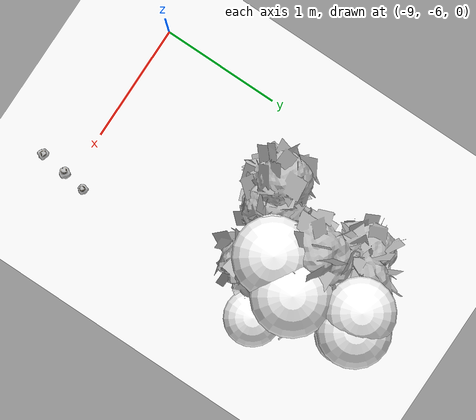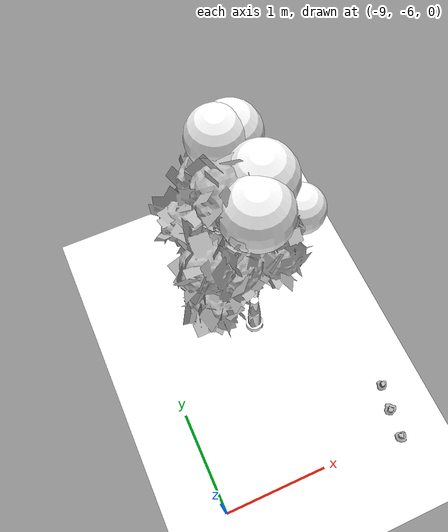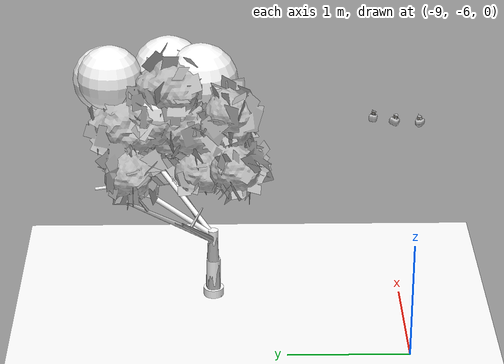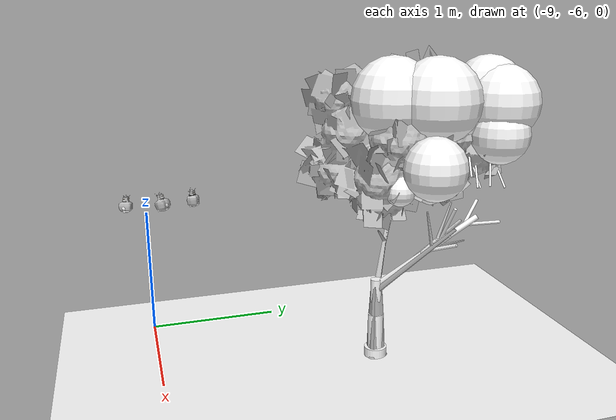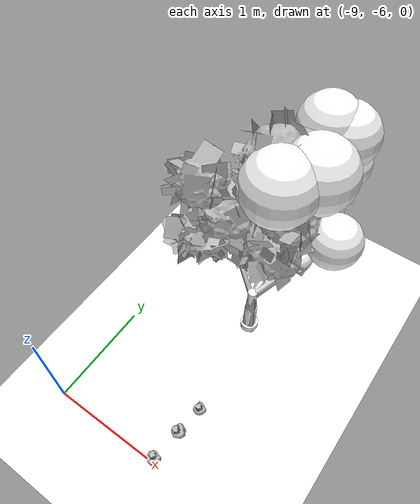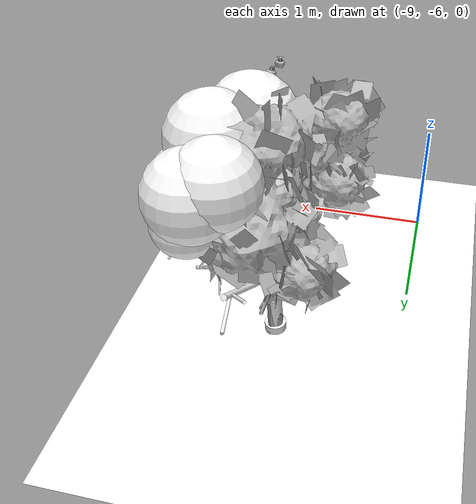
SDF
<sdf version="1.11">
 <world name="peach_orchard">
  <model name="ground">
   <static>true</static>
   <link name="link">
    <visual name="soil">
     <geometry><plane><normal>0 0 1</normal><size>32 22</size></plane></geometry>
     <material>
      <ambient>1 1 1 1</ambient>
      <diffuse>1 1 1 1</diffuse>
      <specular>0.1 0.1 0.1 1</specular>
      <pbr>
       <metal>
        <albedo_map>textures/soil_albedo.png</albedo_map>
        <normal_map type="tangent">textures/soil_normal.png</normal_map>
        <roughness>0.95</roughness>
        <metalness>0</metalness>
       </metal>
      </pbr>
     </material>
    </visual>
    <collision name="c_soil">
     <geometry><plane><normal>0 0 1</normal><size>32 22</size></plane></geometry>
    </collision>
   </link>
  </model>
  <model name="tree_r0_t1">
   <pose>-8 -4.4 0 0 0 0</pose>
   <static>true</static>
   <link name="link">
    <visual name="tree_mesh">
     <pose>0 0 0 0 0 0.17301</pose>
     <geometry>
      <mesh><uri>model://peach_sim/meshes/peach_tree_b.glb</uri><scale>0.988746 0.988746 0.988746</scale></mesh>
     </geometry>
    </visual>
    <visual name="trunk_0">
     <pose>0 0 0.170907 0 0 0</pose>
     <geometry><cylinder><radius>0.0594638</radius><length>0.341814</length></cylinder></geometry>
     <material>
      <ambient>1 1 1 1</ambient>
      <diffuse>1 1 1 1</diffuse>
      <specular>0.1 0.1 0.1 1</specular>
      <pbr>
       <metal>
        <albedo_map>textures/bark_albedo.png</albedo_map>
        <normal_map type="tangent">textures/bark_normal.png</normal_map>
        <roughness>0.9</roughness>
        <metalness>0</metalness>
       </metal>
      </pbr>
     </material>
    </visual>
    <collision name="c_trunk_0">
     <pose>0 0 0.170907 0 0 0</pose>
     <geometry><cylinder><radius>0.0594638</radius><length>0.341814</length></cylinder></geometry>
    </collision>
    <visual name="trunk_1">
     <pose>0 0 0.481648 0 0 0</pose>
     <geometry><cylinder><radius>0.042814</radius><length>0.279666</length></cylinder></geometry>
     <material>
      <ambient>1 1 1 1</ambient>
      <diffuse>1 1 1 1</diffuse>
      <specular>0.1 0.1 0.1 1</specular>
      <pbr>
       <metal>
        <albedo_map>textures/bark_albedo.png</albedo_map>
        <normal_map type="tangent">textures/bark_normal.png</normal_map>
        <roughness>0.9</roughness>
        <metalness>0</metalness>
       </metal>
      </pbr>
     </material>
    </visual>
    <collision name="c_trunk_1">
     <pose>0 0 0.481648 0 0 0</pose>
     <geometry><cylinder><radius>0.042814</radius><length>0.279666</length></cylinder></geometry>
    </collision>
    <visual name="root_flare">
     <pose>0 0 0.035 0 0 0</pose>
     <geometry><cylinder><radius>0.0862226</radius><length>0.07</length></cylinder></geometry>
     <material>
      <ambient>1 1 1 1</ambient>
      <diffuse>1 1 1 1</diffuse>
      <specular>0.1 0.1 0.1 1</specular>
      <pbr>
       <metal>
        <albedo_map>textures/bark_albedo.png</albedo_map>
        <normal_map type="tangent">textures/bark_normal.png</normal_map>
        <roughness>0.95</roughness>
        <metalness>0</metalness>
       </metal>
      </pbr>
     </material>
    </visual>
    <visual name="scaffold_0">
     <pose>0.0526236 0.379852 0.822378 0 0.991944 1.43314</pose>
     <geometry><cylinder><radius>0.022</radius><length>0.916221</length></cylinder></geometry>
     <material>
      <ambient>1 1 1 1</ambient>
      <diffuse>1 1 1 1</diffuse>
      <specular>0.1 0.1 0.1 1</specular>
      <pbr>
       <metal>
        <albedo_map>textures/bark_albedo.png</albedo_map>
        <normal_map type="tangent">textures/bark_normal.png</normal_map>
        <roughness>0.9</roughness>
        <metalness>0</metalness>
       </metal>
      </pbr>
     </material>
    </visual>
    <collision name="c_scaffold_0">
     <pose>0.0526236 0.379852 0.822378 0 0.991944 1.43314</pose>
     <geometry><cylinder><radius>0.022</radius><length>0.916221</length></cylinder></geometry>
    </collision>
    <visual name="branchlet_0_0">
     <pose>0.0714903 0.830336 1.00641 0 1.64038 1.71219</pose>
     <geometry><cylinder><radius>0.012</radius><length>0.313919</length></cylinder></geometry>
     <material>
      <ambient>1 1 1 1</ambient>
      <diffuse>1 1 1 1</diffuse>
      <specular>0.1 0.1 0.1 1</specular>
      <pbr>
       <metal>
        <albedo_map>textures/bark_albedo.png</albedo_map>
        <normal_map type="tangent">textures/bark_normal.png</normal_map>
        <roughness>0.9</roughness>
        <metalness>0</metalness>
       </metal>
      </pbr>
     </material>
    </visual>
    <visual name="branchlet_0_1">
     <pose>0.145629 0.494613 1.03505 0 0.50174 0.259137</pose>
     <geometry><cylinder><radius>0.012</radius><length>0.344367</length></cylinder></geometry>
     <material>
      <ambient>1 1 1 1</ambient>
      <diffuse>1 1 1 1</diffuse>
      <specular>0.1 0.1 0.1 1</specular>
      <pbr>
       <metal>
        <albedo_map>textures/bark_albedo.png</albedo_map>
        <normal_map type="tangent">textures/bark_normal.png</normal_map>
        <roughness>0.9</roughness>
        <metalness>0</metalness>
       </metal>
      </pbr>
     </material>
    </visual>
    <visual name="branchlet_0_2">
     <pose>0.0159708 0.748942 1.07806 0 1.01911 2.24976</pose>
     <geometry><cylinder><radius>0.012</radius><length>0.280179</length></cylinder></geometry>
     <material>
      <ambient>1 1 1 1</ambient>
      <diffuse>1 1 1 1</diffuse>
      <specular>0.1 0.1 0.1 1</specular>
      <pbr>
       <metal>
        <albedo_map>textures/bark_albedo.png</albedo_map>
        <normal_map type="tangent">textures/bark_normal.png</normal_map>
        <roughness>0.9</roughness>
        <metalness>0</metalness>
       </metal>
      </pbr>
     </material>
    </visual>
    <visual name="scaffold_1">
     <pose>0.159735 0.21292 0.797193 0 0.868093 0.927159</pose>
     <geometry><cylinder><radius>0.022</radius><length>0.697622</length></cylinder></geometry>
     <material>
      <ambient>1 1 1 1</ambient>
      <diffuse>1 1 1 1</diffuse>
      <specular>0.1 0.1 0.1 1</specular>
      <pbr>
       <metal>
        <albedo_map>textures/bark_albedo.png</albedo_map>
        <normal_map type="tangent">textures/bark_normal.png</normal_map>
        <roughness>0.9</roughness>
        <metalness>0</metalness>
       </metal>
      </pbr>
     </material>
    </visual>
    <collision name="c_scaffold_1">
     <pose>0.159735 0.21292 0.797193 0 0.868093 0.927159</pose>
     <geometry><cylinder><radius>0.022</radius><length>0.697622</length></cylinder></geometry>
    </collision>
    <visual name="branchlet_1_0">
     <pose>0.229747 0.290917 0.905069 0 0.744111 0.811076</pose>
     <geometry><cylinder><radius>0.012</radius><length>0.234479</length></cylinder></geometry>
     <material>
      <ambient>1 1 1 1</ambient>
      <diffuse>1 1 1 1</diffuse>
      <specular>0.1 0.1 0.1 1</specular>
      <pbr>
       <metal>
        <albedo_map>textures/bark_albedo.png</albedo_map>
        <normal_map type="tangent">textures/bark_normal.png</normal_map>
        <roughness>0.9</roughness>
        <metalness>0</metalness>
       </metal>
      </pbr>
     </material>
    </visual>
    <visual name="branchlet_1_1">
     <pose>0.319047 0.372397 0.936307 0 1.20753 0.647583</pose>
     <geometry><cylinder><radius>0.012</radius><length>0.24605</length></cylinder></geometry>
     <material>
      <ambient>1 1 1 1</ambient>
      <diffuse>1 1 1 1</diffuse>
      <specular>0.1 0.1 0.1 1</specular>
      <pbr>
       <metal>
        <albedo_map>textures/bark_albedo.png</albedo_map>
        <normal_map type="tangent">textures/bark_normal.png</normal_map>
        <roughness>0.9</roughness>
        <metalness>0</metalness>
       </metal>
      </pbr>
     </material>
    </visual>
    <visual name="canopy_0">
     <pose>-0.00565732 0.405361 1.78113 0 0 0</pose>
     <geometry><sphere><radius>0.309091</radius></sphere></geometry>
     <material>
      <ambient>1 1 1 1</ambient>
      <diffuse>1 1 1 1</diffuse>
      <specular>0.1 0.1 0.1 1</specular>
      <pbr>
       <metal>
        <albedo_map>textures/leaf_albedo.png</albedo_map>
        <normal_map type="tangent">textures/leaf_normal.png</normal_map>
        <roughness>0.85</roughness>
        <metalness>0</metalness>
       </metal>
      </pbr>
     </material>
    </visual>
    <collision name="c_canopy_0">
     <pose>-0.00565732 0.405361 1.78113 0 0 0</pose>
     <geometry><sphere><radius>0.309091</radius></sphere></geometry>
    </collision>
    <visual name="canopy_1">
     <pose>-0.0367372 0.00923862 1.95698 0 0 0</pose>
     <geometry><sphere><radius>0.184651</radius></sphere></geometry>
     <material>
      <ambient>1 1 1 1</ambient>
      <diffuse>1 1 1 1</diffuse>
      <specular>0.1 0.1 0.1 1</specular>
      <pbr>
       <metal>
        <albedo_map>textures/leaf_albedo.png</albedo_map>
        <normal_map type="tangent">textures/leaf_normal.png</normal_map>
        <roughness>0.85</roughness>
        <metalness>0</metalness>
       </metal>
      </pbr>
     </material>
    </visual>
    <collision name="c_canopy_1">
     <pose>-0.0367372 0.00923862 1.95698 0 0 0</pose>
     <geometry><sphere><radius>0.184651</radius></sphere></geometry>
    </collision>
    <visual name="canopy_2">
     <pose>0.0256087 0.437801 1.83449 0 0 0</pose>
     <geometry><sphere><radius>0.211861</radius></sphere></geometry>
     <material>
      <ambient>1 1 1 1</ambient>
      <diffuse>1 1 1 1</diffuse>
      <specular>0.1 0.1 0.1 1</specular>
      <pbr>
       <metal>
        <albedo_map>textures/leaf_albedo.png</albedo_map>
        <normal_map type="tangent">textures/leaf_normal.png</normal_map>
        <roughness>0.85</roughness>
        <metalness>0</metalness>
       </metal>
      </pbr>
     </material>
    </visual>
    <collision name="c_canopy_2">
     <pose>0.0256087 0.437801 1.83449 0 0 0</pose>
     <geometry><sphere><radius>0.211861</radius></sphere></geometry>
    </collision>
    <visual name="canopy_3">
     <pose>0.516677 0.209098 1.56682 0 0 0</pose>
     <geometry><sphere><radius>0.218295</radius></sphere></geometry>
     <material>
      <ambient>1 1 1 1</ambient>
      <diffuse>1 1 1 1</diffuse>
      <specular>0.1 0.1 0.1 1</specular>
      <pbr>
       <metal>
        <albedo_map>textures/leaf_albedo.png</albedo_map>
        <normal_map type="tangent">textures/leaf_normal.png</normal_map>
        <roughness>0.85</roughness>
        <metalness>0</metalness>
       </metal>
      </pbr>
     </material>
    </visual>
    <visual name="canopy_4">
     <pose>0.248529 0.82955 1.72011 0 0 0</pose>
     <geometry><sphere><radius>0.2164</radius></sphere></geometry>
     <material>
      <ambient>1 1 1 1</ambient>
      <diffuse>1 1 1 1</diffuse>
      <specular>0.1 0.1 0.1 1</specular>
      <pbr>
       <metal>
        <albedo_map>textures/leaf_albedo.png</albedo_map>
        <normal_map type="tangent">textures/leaf_normal.png</normal_map>
        <roughness>0.85</roughness>
        <metalness>0</metalness>
       </metal>
      </pbr>
     </material>
    </visual>
    <visual name="canopy_5">
     <pose>0.0654454 0.0849304 1.97389 0 0 0</pose>
     <geometry><sphere><radius>0.305003</radius></sphere></geometry>
     <material>
      <ambient>1 1 1 1</ambient>
      <diffuse>1 1 1 1</diffuse>
      <specular>0.1 0.1 0.1 1</specular>
      <pbr>
       <metal>
        <albedo_map>textures/leaf_albedo.png</albedo_map>
        <normal_map type="tangent">textures/leaf_normal.png</normal_map>
        <roughness>0.85</roughness>
        <metalness>0</metalness>
       </metal>
      </pbr>
     </material>
    </visual>
    <visual name="canopy_6">
     <pose>0.18583 0.867067 1.93907 0 0 0</pose>
     <geometry><sphere><radius>0.274565</radius></sphere></geometry>
     <material>
      <ambient>1 1 1 1</ambient>
      <diffuse>1 1 1 1</diffuse>
      <specular>0.1 0.1 0.1 1</specular>
      <pbr>
       <metal>
        <albedo_map>textures/leaf_albedo.png</albedo_map>
        <normal_map type="tangent">textures/leaf_normal.png</normal_map>
        <roughness>0.85</roughness>
        <metalness>0</metalness>
       </metal>
      </pbr>
     </material>
    </visual>
    <visual name="canopy_7">
     <pose>0.106884 0.559031 1.86271 0 0 0</pose>
     <geometry><sphere><radius>0.189376</radius></sphere></geometry>
     <material>
      <ambient>1 1 1 1</ambient>
      <diffuse>1 1 1 1</diffuse>
      <specular>0.1 0.1 0.1 1</specular>
      <pbr>
       <metal>
        <albedo_map>textures/leaf_albedo.png</albedo_map>
        <normal_map type="tangent">textures/leaf_normal.png</normal_map>
        <roughness>0.85</roughness>
        <metalness>0</metalness>
       </metal>
      </pbr>
     </material>
    </visual>
    <visual name="canopy_8">
     <pose>0.0531343 0.825626 2.00528 0 0 0</pose>
     <geometry><sphere><radius>0.265376</radius></sphere></geometry>
     <material>
      <ambient>1 1 1 1</ambient>
      <diffuse>1 1 1 1</diffuse>
      <specular>0.1 0.1 0.1 1</specular>
      <pbr>
       <metal>
        <albedo_map>textures/leaf_albedo.png</albedo_map>
        <normal_map type="tangent">textures/leaf_normal.png</normal_map>
        <roughness>0.85</roughness>
        <metalness>0</metalness>
       </metal>
      </pbr>
     </material>
    </visual>
    <visual name="canopy_9">
     <pose>0.224933 0.350795 1.97596 0 0 0</pose>
     <geometry><sphere><radius>0.306023</radius></sphere></geometry>
     <material>
      <ambient>1 1 1 1</ambient>
      <diffuse>1 1 1 1</diffuse>
      <specular>0.1 0.1 0.1 1</specular>
      <pbr>
       <metal>
        <albedo_map>textures/leaf_albedo.png</albedo_map>
        <normal_map type="tangent">textures/leaf_normal.png</normal_map>
        <roughness>0.85</roughness>
        <metalness>0</metalness>
       </metal>
      </pbr>
     </material>
    </visual>
    <visual name="foliage_0">
     <pose>0.335429 0.0364044 1.38687 0 0 0</pose>
     <geometry><sphere><radius>0.106398</radius></sphere></geometry>
     <material>
      <ambient>1 1 1 1</ambient>
      <diffuse>1 1 1 1</diffuse>
      <specular>0.1 0.1 0.1 1</specular>
      <pbr>
       <metal>
        <albedo_map>textures/leaf_albedo.png</albedo_map>
        <normal_map type="tangent">textures/leaf_normal.png</normal_map>
        <roughness>0.85</roughness>
        <metalness>0</metalness>
       </metal>
      </pbr>
     </material>
    </visual>
    <visual name="foliage_4">
     <pose>0.138846 0.367717 1.48134 0 0 0</pose>
     <geometry><sphere><radius>0.120223</radius></sphere></geometry>
     <material>
      <ambient>1 1 1 1</ambient>
      <diffuse>1 1 1 1</diffuse>
      <specular>0.1 0.1 0.1 1</specular>
      <pbr>
       <metal>
        <albedo_map>textures/leaf_albedo.png</albedo_map>
        <normal_map type="tangent">textures/leaf_normal.png</normal_map>
        <roughness>0.85</roughness>
        <metalness>0</metalness>
       </metal>
      </pbr>
     </material>
    </visual>
    <visual name="foliage_8">
     <pose>0.194677 0.324617 1.33434 0 0 0</pose>
     <geometry><sphere><radius>0.101462</radius></sphere></geometry>
     <material>
      <ambient>1 1 1 1</ambient>
      <diffuse>1 1 1 1</diffuse>
      <specular>0.1 0.1 0.1 1</specular>
      <pbr>
       <metal>
        <albedo_map>textures/leaf_albedo.png</albedo_map>
        <normal_map type="tangent">textures/leaf_normal.png</normal_map>
        <roughness>0.85</roughness>
        <metalness>0</metalness>
       </metal>
      </pbr>
     </material>
    </visual>
    <visual name="twig_0">
     <pose>0.319271 0.116214 1.50184 0 0.70652 2.94143</pose>
     <geometry><cylinder><radius>0.007</radius><length>0.111262</length></cylinder></geometry>
     <material>
      <ambient>1 1 1 1</ambient>
      <diffuse>1 1 1 1</diffuse>
      <specular>0.1 0.1 0.1 1</specular>
      <pbr>
       <metal>
        <albedo_map>textures/bark_albedo.png</albedo_map>
        <normal_map type="tangent">textures/bark_normal.png</normal_map>
        <roughness>0.9</roughness>
        <metalness>0</metalness>
       </metal>
      </pbr>
     </material>
    </visual>
    <visual name="twig_1">
     <pose>0.398182 0.327903 1.47739 0 0.224347 -2.33539</pose>
     <geometry><cylinder><radius>0.007</radius><length>0.206848</length></cylinder></geometry>
     <material>
      <ambient>1 1 1 1</ambient>
      <diffuse>1 1 1 1</diffuse>
      <specular>0.1 0.1 0.1 1</specular>
      <pbr>
       <metal>
        <albedo_map>textures/bark_albedo.png</albedo_map>
        <normal_map type="tangent">textures/bark_normal.png</normal_map>
        <roughness>0.9</roughness>
        <metalness>0</metalness>
       </metal>
      </pbr>
     </material>
    </visual>
    <visual name="twig_2">
     <pose>0.354279 0.601828 1.45208 0 0.519013 2.92734</pose>
     <geometry><cylinder><radius>0.007</radius><length>0.164391</length></cylinder></geometry>
     <material>
      <ambient>1 1 1 1</ambient>
      <diffuse>1 1 1 1</diffuse>
      <specular>0.1 0.1 0.1 1</specular>
      <pbr>
       <metal>
        <albedo_map>textures/bark_albedo.png</albedo_map>
        <normal_map type="tangent">textures/bark_normal.png</normal_map>
        <roughness>0.9</roughness>
        <metalness>0</metalness>
       </metal>
      </pbr>
     </material>
    </visual>
    <visual name="twig_3">
     <pose>0.374728 0.786536 1.42444 0 0.685027 -2.98928</pose>
     <geometry><cylinder><radius>0.007</radius><length>0.136285</length></cylinder></geometry>
     <material>
      <ambient>1 1 1 1</ambient>
      <diffuse>1 1 1 1</diffuse>
      <specular>0.1 0.1 0.1 1</specular>
      <pbr>
       <metal>
        <albedo_map>textures/bark_albedo.png</albedo_map>
        <normal_map type="tangent">textures/bark_normal.png</normal_map>
        <roughness>0.9</roughness>
        <metalness>0</metalness>
       </metal>
      </pbr>
     </material>
    </visual>
    <visual name="twig_4">
     <pose>0.232594 0.414236 1.56295 0 0.228307 -2.14235</pose>
     <geometry><cylinder><radius>0.007</radius><length>0.118999</length></cylinder></geometry>
     <material>
      <ambient>1 1 1 1</ambient>
      <diffuse>1 1 1 1</diffuse>
      <specular>0.1 0.1 0.1 1</specular>
      <pbr>
       <metal>
        <albedo_map>textures/bark_albedo.png</albedo_map>
        <normal_map type="tangent">textures/bark_normal.png</normal_map>
        <roughness>0.9</roughness>
        <metalness>0</metalness>
       </metal>
      </pbr>
     </material>
    </visual>
    <visual name="twig_5">
     <pose>0.190001 0.40193 1.58296 0 0.244846 -2.8036</pose>
     <geometry><cylinder><radius>0.007</radius><length>0.117355</length></cylinder></geometry>
     <material>
      <ambient>1 1 1 1</ambient>
      <diffuse>1 1 1 1</diffuse>
      <specular>0.1 0.1 0.1 1</specular>
      <pbr>
       <metal>
        <albedo_map>textures/bark_albedo.png</albedo_map>
        <normal_map type="tangent">textures/bark_normal.png</normal_map>
        <roughness>0.9</roughness>
        <metalness>0</metalness>
       </metal>
      </pbr>
     </material>
    </visual>
    <visual name="twig_6">
     <pose>0.240252 0.404035 1.5498 0 0.691942 3.00389</pose>
     <geometry><cylinder><radius>0.007</radius><length>0.107317</length></cylinder></geometry>
     <material>
      <ambient>1 1 1 1</ambient>
      <diffuse>1 1 1 1</diffuse>
      <specular>0.1 0.1 0.1 1</specular>
      <pbr>
       <metal>
        <albedo_map>textures/bark_albedo.png</albedo_map>
        <normal_map type="tangent">textures/bark_normal.png</normal_map>
        <roughness>0.9</roughness>
        <metalness>0</metalness>
       </metal>
      </pbr>
     </material>
    </visual>
    <visual name="twig_7">
     <pose>0.496088 0.472219 1.55939 0 0.683747 2.88329</pose>
     <geometry><cylinder><radius>0.007</radius><length>0.149636</length></cylinder></geometry>
     <material>
      <ambient>1 1 1 1</ambient>
      <diffuse>1 1 1 1</diffuse>
      <specular>0.1 0.1 0.1 1</specular>
      <pbr>
       <metal>
        <albedo_map>textures/bark_albedo.png</albedo_map>
        <normal_map type="tangent">textures/bark_normal.png</normal_map>
        <roughness>0.9</roughness>
        <metalness>0</metalness>
       </metal>
      </pbr>
     </material>
    </visual>
    <visual name="twig_8">
     <pose>0.243494 0.33531 1.4051 0 0.270389 2.80398</pose>
     <geometry><cylinder><radius>0.007</radius><length>0.101068</length></cylinder></geometry>
     <material>
      <ambient>1 1 1 1</ambient>
      <diffuse>1 1 1 1</diffuse>
      <specular>0.1 0.1 0.1 1</specular>
      <pbr>
       <metal>
        <albedo_map>textures/bark_albedo.png</albedo_map>
        <normal_map type="tangent">textures/bark_normal.png</normal_map>
        <roughness>0.9</roughness>
        <metalness>0</metalness>
       </metal>
      </pbr>
     </material>
    </visual>
    <visual name="twig_9">
     <pose>0.172024 0.512517 1.36029 0 0.717054 2.77618</pose>
     <geometry><cylinder><radius>0.007</radius><length>0.104775</length></cylinder></geometry>
     <material>
      <ambient>1 1 1 1</ambient>
      <diffuse>1 1 1 1</diffuse>
      <specular>0.1 0.1 0.1 1</specular>
      <pbr>
       <metal>
        <albedo_map>textures/bark_albedo.png</albedo_map>
        <normal_map type="tangent">textures/bark_normal.png</normal_map>
        <roughness>0.9</roughness>
        <metalness>0</metalness>
       </metal>
      </pbr>
     </material>
    </visual>
    <visual name="twig_10">
     <pose>0.186333 0.685261 1.4254 0 0.4155 -2.47994</pose>
     <geometry><cylinder><radius>0.007</radius><length>0.212198</length></cylinder></geometry>
     <material>
      <ambient>1 1 1 1</ambient>
      <diffuse>1 1 1 1</diffuse>
      <specular>0.1 0.1 0.1 1</specular>
      <pbr>
       <metal>
        <albedo_map>textures/bark_albedo.png</albedo_map>
        <normal_map type="tangent">textures/bark_normal.png</normal_map>
        <roughness>0.9</roughness>
        <metalness>0</metalness>
       </metal>
      </pbr>
     </material>
    </visual>
    <visual name="twig_11">
     <pose>0.179184 0.80789 1.41519 0 0.554379 2.69645</pose>
     <geometry><cylinder><radius>0.007</radius><length>0.190187</length></cylinder></geometry>
     <material>
      <ambient>1 1 1 1</ambient>
      <diffuse>1 1 1 1</diffuse>
      <specular>0.1 0.1 0.1 1</specular>
      <pbr>
       <metal>
        <albedo_map>textures/bark_albedo.png</albedo_map>
        <normal_map type="tangent">textures/bark_normal.png</normal_map>
        <roughness>0.9</roughness>
        <metalness>0</metalness>
       </metal>
      </pbr>
     </material>
    </visual>
   </link>
  </model>
  <model name="peach_tree_r0_t0_02">
   <pose>-7.62189 -6.15566 1.41191 0 0.117737 2.72746</pose>
   <static>true</static>
   <link name="bag">
    <visual name="bag_mesh">
     <pose>0 0 0.0433909 0 0 0</pose>
     <geometry>
      <mesh><uri>model://peach_sim/meshes/bagged_peach.glb</uri><scale>1.02486 1.13799 0.986156</scale></mesh>
     </geometry>
    </visual>
    <visual name="body">
     <pose>0 0 0.0253909 0 0 0</pose>
     <geometry><ellipsoid><radii>0.0384322 0.0295877 0.0274222</radii></ellipsoid></geometry>
     <material>
      <ambient>1 1 1 1</ambient>
      <diffuse>1 1 1 1</diffuse>
      <specular>0.1 0.1 0.1 1</specular>
      <pbr>
       <metal>
        <albedo_map>textures/paper_bag_albedo.png</albedo_map>
        <normal_map type="tangent">textures/paper_bag_normal.png</normal_map>
        <roughness>0.72</roughness>
        <metalness>0</metalness>
       </metal>
      </pbr>
     </material>
    </visual>
    <visual name="bottom_fold">
     <pose>0 0 0.012 0 0 0.35</pose>
     <geometry><box><size>0.0595699 0.0340259 0.022</size></box></geometry>
     <material>
      <ambient>1 1 1 1</ambient>
      <diffuse>1 1 1 1</diffuse>
      <specular>0.1 0.1 0.1 1</specular>
      <pbr>
       <metal>
        <albedo_map>textures/paper_bag_albedo.png</albedo_map>
        <normal_map type="tangent">textures/paper_bag_normal.png</normal_map>
        <roughness>0.8</roughness>
        <metalness>0</metalness>
       </metal>
      </pbr>
     </material>
    </visual>
    <visual name="fruit">
     <pose>0 0 0.0177791 0 0 0</pose>
     <geometry><sphere><radius>0.0247303</radius></sphere></geometry>
     <material>
      <ambient>1 1 1 1</ambient>
      <diffuse>1 1 1 1</diffuse>
      <specular>0.1 0.1 0.1 1</specular>
      <pbr>
       <metal>
        <albedo_map>textures/fruit_skin_albedo.png</albedo_map>
        <normal_map type="tangent">textures/fruit_skin_normal.png</normal_map>
        <roughness>0.55</roughness>
        <metalness>0</metalness>
       </metal>
      </pbr>
     </material>
    </visual>
    <visual name="neck">
     <pose>0 0 0.0597818 0 0 0</pose>
     <geometry><cylinder><radius>0.013</radius><length>0.018</length></cylinder></geometry>
     <material>
      <ambient>1 1 1 1</ambient>
      <diffuse>1 1 1 1</diffuse>
      <specular>0.1 0.1 0.1 1</specular>
      <pbr>
       <metal>
        <albedo_map>textures/paper_bag_albedo.png</albedo_map>
        <normal_map type="tangent">textures/paper_bag_normal.png</normal_map>
        <roughness>0.75</roughness>
        <metalness>0</metalness>
       </metal>
      </pbr>
     </material>
    </visual>
    <visual name="gather">
     <pose>0 0 0.0407818 0 0 0</pose>
     <geometry><cylinder><radius>0.019</radius><length>0.02</length></cylinder></geometry>
     <material>
      <ambient>1 1 1 1</ambient>
      <diffuse>1 1 1 1</diffuse>
      <specular>0.1 0.1 0.1 1</specular>
      <pbr>
       <metal>
        <albedo_map>textures/paper_bag_albedo.png</albedo_map>
        <normal_map type="tangent">textures/paper_bag_normal.png</normal_map>
        <roughness>0.8</roughness>
        <metalness>0</metalness>
       </metal>
      </pbr>
     </material>
    </visual>
    <visual name="inner_paper">
     <pose>0 0 0.0647818 0 0 0</pose>
     <geometry><cylinder><radius>0.01</radius><length>0.008</length></cylinder></geometry>
     <material>
      <ambient>0.180392 0.14902 0.133333 1</ambient>
      <diffuse>0.180392 0.14902 0.133333 1</diffuse>
      <specular>0.1 0.1 0.1 1</specular>
     </material>
    </visual>
    <visual name="wire_0">
     <pose>0 0 0.0547818 0 0 0</pose>
     <geometry><cylinder><radius>0.0205</radius><length>0.0035</length></cylinder></geometry>
     <material>
      <ambient>0.25 0.25 0.25 1</ambient>
      <diffuse>0.25 0.25 0.25 1</diffuse>
      <specular>0.1 0.1 0.1 1</specular>
     </material>
    </visual>
    <visual name="wire_1">
     <pose>0 0 0.0617818 0 0 0</pose>
     <geometry><cylinder><radius>0.0205</radius><length>0.0035</length></cylinder></geometry>
     <material>
      <ambient>0.25 0.25 0.25 1</ambient>
      <diffuse>0.25 0.25 0.25 1</diffuse>
      <specular>0.1 0.1 0.1 1</specular>
     </material>
    </visual>
    <visual name="wire_tail">
     <pose>0.01 0 0.0627818 0 0.521618 0</pose>
     <geometry><cylinder><radius>0.0012</radius><length>0.026</length></cylinder></geometry>
     <material>
      <ambient>0.25 0.25 0.25 1</ambient>
      <diffuse>0.25 0.25 0.25 1</diffuse>
      <specular>0.1 0.1 0.1 1</specular>
     </material>
    </visual>
    <collision name="c_body">
     <pose>0 0 0.0253909 0 0 0</pose>
     <geometry><cylinder><radius>0.0384322</radius><length>0.0507818</length></cylinder></geometry>
    </collision>
   </link>
  </model>
  <model name="peach_tree_r0_t0_03">
   <pose>-7.59278 -5.93657 1.41108 0 0.278675 -2.29431</pose>
   <static>true</static>
   <link name="bag">
    <visual name="bag_mesh">
     <pose>0 0 0.0474425 0 0 -0</pose>
     <geometry>
      <mesh><uri>model://peach_sim/meshes/bagged_peach.glb</uri><scale>1.04955 1.2209 1.07824</scale></mesh>
     </geometry>
    </visual>
    <visual name="body">
     <pose>0 0 0.0294425 0 0 0</pose>
     <geometry><ellipsoid><radii>0.0393582 0.0317434 0.0317979</radii></ellipsoid></geometry>
     <material>
      <ambient>1 1 1 1</ambient>
      <diffuse>1 1 1 1</diffuse>
      <specular>0.1 0.1 0.1 1</specular>
      <pbr>
       <metal>
        <albedo_map>textures/paper_bag_albedo.png</albedo_map>
        <normal_map type="tangent">textures/paper_bag_normal.png</normal_map>
        <roughness>0.72</roughness>
        <metalness>0</metalness>
       </metal>
      </pbr>
     </material>
    </visual>
    <visual name="bottom_fold">
     <pose>0 0 0.012 0 0 0.35</pose>
     <geometry><box><size>0.0610052 0.0365049 0.022</size></box></geometry>
     <material>
      <ambient>1 1 1 1</ambient>
      <diffuse>1 1 1 1</diffuse>
      <specular>0.1 0.1 0.1 1</specular>
      <pbr>
       <metal>
        <albedo_map>textures/paper_bag_albedo.png</albedo_map>
        <normal_map type="tangent">textures/paper_bag_normal.png</normal_map>
        <roughness>0.8</roughness>
        <metalness>0</metalness>
       </metal>
      </pbr>
     </material>
    </visual>
    <visual name="fruit">
     <pose>0 0 0.0189303 0 0 0</pose>
     <geometry><sphere><radius>0.0259275</radius></sphere></geometry>
     <material>
      <ambient>1 1 1 1</ambient>
      <diffuse>1 1 1 1</diffuse>
      <specular>0.1 0.1 0.1 1</specular>
      <pbr>
       <metal>
        <albedo_map>textures/fruit_skin_albedo.png</albedo_map>
        <normal_map type="tangent">textures/fruit_skin_normal.png</normal_map>
        <roughness>0.55</roughness>
        <metalness>0</metalness>
       </metal>
      </pbr>
     </material>
    </visual>
    <visual name="neck">
     <pose>0 0 0.067885 0 0 0</pose>
     <geometry><cylinder><radius>0.013</radius><length>0.018</length></cylinder></geometry>
     <material>
      <ambient>1 1 1 1</ambient>
      <diffuse>1 1 1 1</diffuse>
      <specular>0.1 0.1 0.1 1</specular>
      <pbr>
       <metal>
        <albedo_map>textures/paper_bag_albedo.png</albedo_map>
        <normal_map type="tangent">textures/paper_bag_normal.png</normal_map>
        <roughness>0.75</roughness>
        <metalness>0</metalness>
       </metal>
      </pbr>
     </material>
    </visual>
    <visual name="gather">
     <pose>0 0 0.048885 0 0 0</pose>
     <geometry><cylinder><radius>0.019</radius><length>0.02</length></cylinder></geometry>
     <material>
      <ambient>1 1 1 1</ambient>
      <diffuse>1 1 1 1</diffuse>
      <specular>0.1 0.1 0.1 1</specular>
      <pbr>
       <metal>
        <albedo_map>textures/paper_bag_albedo.png</albedo_map>
        <normal_map type="tangent">textures/paper_bag_normal.png</normal_map>
        <roughness>0.8</roughness>
        <metalness>0</metalness>
       </metal>
      </pbr>
     </material>
    </visual>
    <visual name="inner_paper">
     <pose>0 0 0.072885 0 0 0</pose>
     <geometry><cylinder><radius>0.01</radius><length>0.008</length></cylinder></geometry>
     <material>
      <ambient>0.180392 0.14902 0.133333 1</ambient>
      <diffuse>0.180392 0.14902 0.133333 1</diffuse>
      <specular>0.1 0.1 0.1 1</specular>
     </material>
    </visual>
    <visual name="wire_0">
     <pose>0 0 0.062885 0 0 0</pose>
     <geometry><cylinder><radius>0.0205</radius><length>0.0035</length></cylinder></geometry>
     <material>
      <ambient>0.25 0.25 0.25 1</ambient>
      <diffuse>0.25 0.25 0.25 1</diffuse>
      <specular>0.1 0.1 0.1 1</specular>
     </material>
    </visual>
    <visual name="wire_1">
     <pose>0 0 0.069885 0 0 0</pose>
     <geometry><cylinder><radius>0.0205</radius><length>0.0035</length></cylinder></geometry>
     <material>
      <ambient>0.25 0.25 0.25 1</ambient>
      <diffuse>0.25 0.25 0.25 1</diffuse>
      <specular>0.1 0.1 0.1 1</specular>
     </material>
    </visual>
    <visual name="wire_tail">
     <pose>0.01 0 0.070885 0 0.521618 0</pose>
     <geometry><cylinder><radius>0.0012</radius><length>0.026</length></cylinder></geometry>
     <material>
      <ambient>0.25 0.25 0.25 1</ambient>
      <diffuse>0.25 0.25 0.25 1</diffuse>
      <specular>0.1 0.1 0.1 1</specular>
     </material>
    </visual>
    <collision name="c_body">
     <pose>0 0 0.0294425 0 0 0</pose>
     <geometry><cylinder><radius>0.0393582</radius><length>0.058885</length></cylinder></geometry>
    </collision>
   </link>
  </model>
  <model name="peach_tree_r0_t0_04">
   <pose>-7.57104 -5.75944 1.4308 0 0.0984068 -1.9769</pose>
   <static>true</static>
   <link name="bag">
    <visual name="bag_mesh">
     <pose>0 0 0.0462415 0 0 -0</pose>
     <geometry>
      <mesh><uri>model://peach_sim/meshes/bagged_peach.glb</uri><scale>0.928431 1.07328 1.05094</scale></mesh>
     </geometry>
    </visual>
    <visual name="body">
     <pose>0 0 0.0282415 0 0 0</pose>
     <geometry><ellipsoid><radii>0.0348162 0.0279052 0.0305008</radii></ellipsoid></geometry>
     <material>
      <ambient>1 1 1 1</ambient>
      <diffuse>1 1 1 1</diffuse>
      <specular>0.1 0.1 0.1 1</specular>
      <pbr>
       <metal>
        <albedo_map>textures/paper_bag_albedo.png</albedo_map>
        <normal_map type="tangent">textures/paper_bag_normal.png</normal_map>
        <roughness>0.72</roughness>
        <metalness>0</metalness>
       </metal>
      </pbr>
     </material>
    </visual>
    <visual name="bottom_fold">
     <pose>0 0 0.012 0 0 0.35</pose>
     <geometry><box><size>0.0539651 0.0320909 0.022</size></box></geometry>
     <material>
      <ambient>1 1 1 1</ambient>
      <diffuse>1 1 1 1</diffuse>
      <specular>0.1 0.1 0.1 1</specular>
      <pbr>
       <metal>
        <albedo_map>textures/paper_bag_albedo.png</albedo_map>
        <normal_map type="tangent">textures/paper_bag_normal.png</normal_map>
        <roughness>0.8</roughness>
        <metalness>0</metalness>
       </metal>
      </pbr>
     </material>
    </visual>
    <visual name="fruit">
     <pose>0 0 0.0208296 0 0 0</pose>
     <geometry><sphere><radius>0.0279027</radius></sphere></geometry>
     <material>
      <ambient>1 1 1 1</ambient>
      <diffuse>1 1 1 1</diffuse>
      <specular>0.1 0.1 0.1 1</specular>
      <pbr>
       <metal>
        <albedo_map>textures/fruit_skin_albedo.png</albedo_map>
        <normal_map type="tangent">textures/fruit_skin_normal.png</normal_map>
        <roughness>0.55</roughness>
        <metalness>0</metalness>
       </metal>
      </pbr>
     </material>
    </visual>
    <visual name="neck">
     <pose>0 0 0.065483 0 0 0</pose>
     <geometry><cylinder><radius>0.013</radius><length>0.018</length></cylinder></geometry>
     <material>
      <ambient>1 1 1 1</ambient>
      <diffuse>1 1 1 1</diffuse>
      <specular>0.1 0.1 0.1 1</specular>
      <pbr>
       <metal>
        <albedo_map>textures/paper_bag_albedo.png</albedo_map>
        <normal_map type="tangent">textures/paper_bag_normal.png</normal_map>
        <roughness>0.75</roughness>
        <metalness>0</metalness>
       </metal>
      </pbr>
     </material>
    </visual>
    <visual name="gather">
     <pose>0 0 0.046483 0 0 0</pose>
     <geometry><cylinder><radius>0.019</radius><length>0.02</length></cylinder></geometry>
     <material>
      <ambient>1 1 1 1</ambient>
      <diffuse>1 1 1 1</diffuse>
      <specular>0.1 0.1 0.1 1</specular>
      <pbr>
       <metal>
        <albedo_map>textures/paper_bag_albedo.png</albedo_map>
        <normal_map type="tangent">textures/paper_bag_normal.png</normal_map>
        <roughness>0.8</roughness>
        <metalness>0</metalness>
       </metal>
      </pbr>
     </material>
    </visual>
    <visual name="inner_paper">
     <pose>0 0 0.070483 0 0 0</pose>
     <geometry><cylinder><radius>0.01</radius><length>0.008</length></cylinder></geometry>
     <material>
      <ambient>0.180392 0.14902 0.133333 1</ambient>
      <diffuse>0.180392 0.14902 0.133333 1</diffuse>
      <specular>0.1 0.1 0.1 1</specular>
     </material>
    </visual>
    <visual name="wire_0">
     <pose>0 0 0.060483 0 0 0</pose>
     <geometry><cylinder><radius>0.0205</radius><length>0.0035</length></cylinder></geometry>
     <material>
      <ambient>0.25 0.25 0.25 1</ambient>
      <diffuse>0.25 0.25 0.25 1</diffuse>
      <specular>0.1 0.1 0.1 1</specular>
     </material>
    </visual>
    <visual name="wire_1">
     <pose>0 0 0.067483 0 0 0</pose>
     <geometry><cylinder><radius>0.0205</radius><length>0.0035</length></cylinder></geometry>
     <material>
      <ambient>0.25 0.25 0.25 1</ambient>
      <diffuse>0.25 0.25 0.25 1</diffuse>
      <specular>0.1 0.1 0.1 1</specular>
     </material>
    </visual>
    <visual name="wire_tail">
     <pose>0.01 0 0.068483 0 0.521618 0</pose>
     <geometry><cylinder><radius>0.0012</radius><length>0.026</length></cylinder></geometry>
     <material>
      <ambient>0.25 0.25 0.25 1</ambient>
      <diffuse>0.25 0.25 0.25 1</diffuse>
      <specular>0.1 0.1 0.1 1</specular>
     </material>
    </visual>
    <collision name="c_body">
     <pose>0 0 0.0282415 0 0 0</pose>
     <geometry><cylinder><radius>0.0348162</radius><length>0.056483</length></cylinder></geometry>
    </collision>
   </link>
  </model>
 </world>
</sdf>
